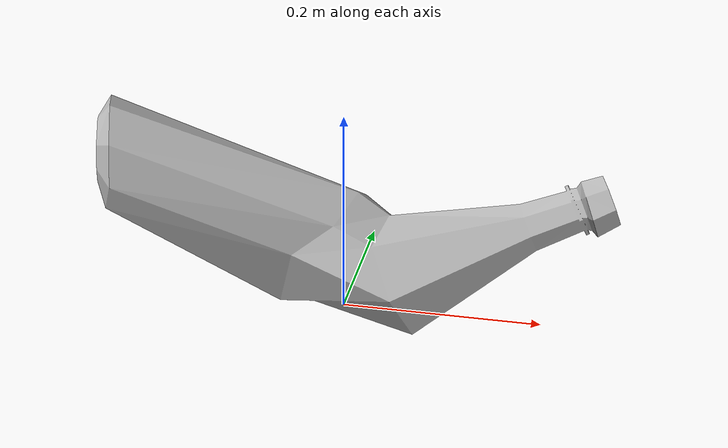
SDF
<?xml version="1.0" ?>
<sdf version="1.6">
  <model name="DirtyBottle3">
    <static>false</static>
    <link name="link">
      <inertial>
        <mass>6.4</mass>
        <inertia>
          <ixx>0.000021715</ixx>
          <ixy>0</ixy>
          <ixz>0</ixz>
          <iyy>0.000021715</iyy>
          <iyz>0</iyz>
          <izz>0.00000178</izz>
        </inertia>
        <pose>0 0 0 0 0 0</pose>
      </inertial>
      <collision name="collision">
        <geometry>
          <mesh>
            <scale>1.0 1.0 1.0</scale>
            <uri>model://dirtyBottle3/meshes/dirty_Plastic_Bottles3.stl</uri>
          </mesh>
        </geometry>
        <surface>
          <bounce>
            <restitution_coefficient>0</restitution_coefficient>
            <threshold>0.01</threshold>
          </bounce>
          <friction>
            <ode>
              <mu>1.2</mu>
              <mu2>1.2</mu2>
            </ode>
          </friction>
        </surface>
      </collision>
      <visual name="visual">
        <geometry>
          <mesh>
            <scale>1.0 1.0 1.0</scale>
            <uri>model://dirtyBottle3/meshes/dirty_Plastic_Bottles3.dae</uri>
          </mesh>
        </geometry>

      </visual>
    </link>
  </model>
</sdf>
